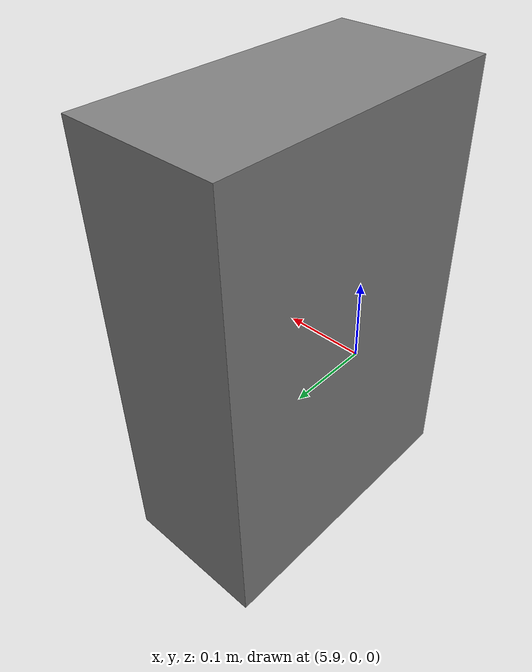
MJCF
<mujoco model="orientation_forms">
  <compiler angle="degree" eulerseq="xyz"/>
  <worldbody>
    <body name="euler_body"      pos="1 0 0" euler="0 90 0"/>
    <body name="quaternion_body" pos="2 0 0" quat="0.70710678 0 0.70710678 0"/>
    <body name="axis_angle_body" pos="3 0 0" axisangle="0 1 0 90"/>
    <body name="xy_axes_body"    pos="4 0 0" xyaxes="0 0 -1 0 1 0"/>
    <body name="z_axis_body"     pos="5 0 0" zaxis="1 0 0"/>
    <body name="geom_orientation_body" pos="6 0 0">
      <geom name="rotated_geom" type="box" size="0.3 0.2 0.1" euler="0 90 0"/>
    </body>
  </worldbody>
</mujoco>
